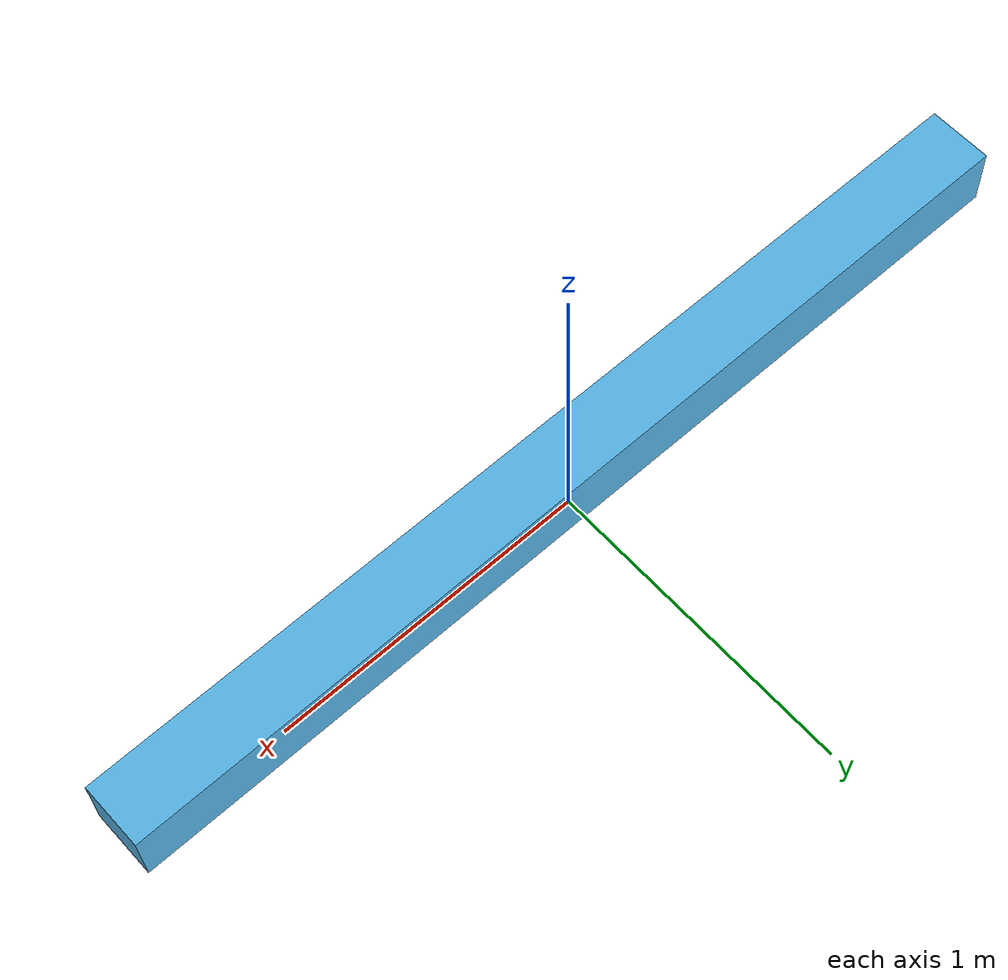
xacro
<?xml version="1.0"?>
<robot xmlns:xacro="http://www.ros.org/wiki/xacro" name="smarty">

<xacro:property name="box_length" value="3"/>
<xacro:property name="box_width" value="0.2"/>
<xacro:property name="box_height" value="0.2"/>

<xacro:property name="box_length_sqrd" value="${box_length*box_length}"/>
<xacro:property name="box_width_sqrd" value="${box_width*box_width}"/>
<xacro:property name="box_height_sqrd" value="${box_height*box_height}"/>

  <link name="base_footprint">
    <origin rpy="0 0 0" xyz="0 0 0"/>
  </link>
  <link name="smart_box">
    <visual>
      <geometry>
        <box size="${box_length} ${box_width} ${box_height}"/>
      </geometry>
      <origin rpy="0 0 0" xyz="0 0 0"/>
    </visual>
  </link>
  <joint name="joint1" type="fixed">
    <parent link="base_footprint"/>
    <child link="smart_box"/>
    <origin xyz="0 0 ${box_height}"/>
  </joint>
</robot>
